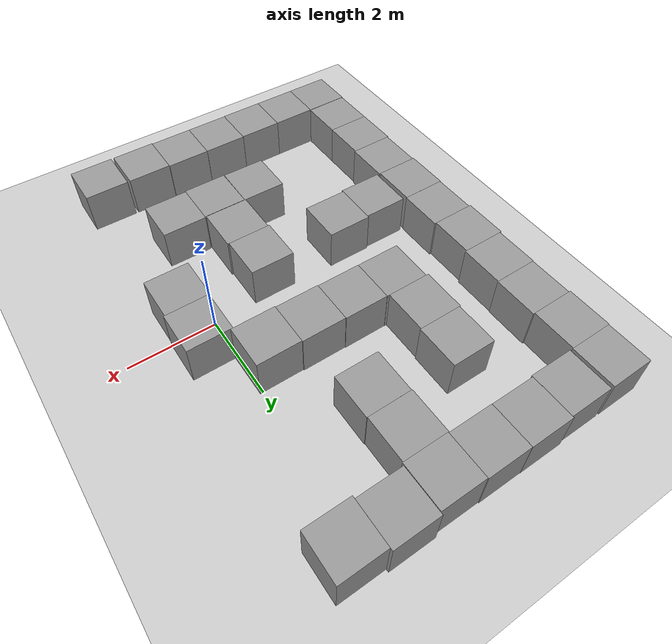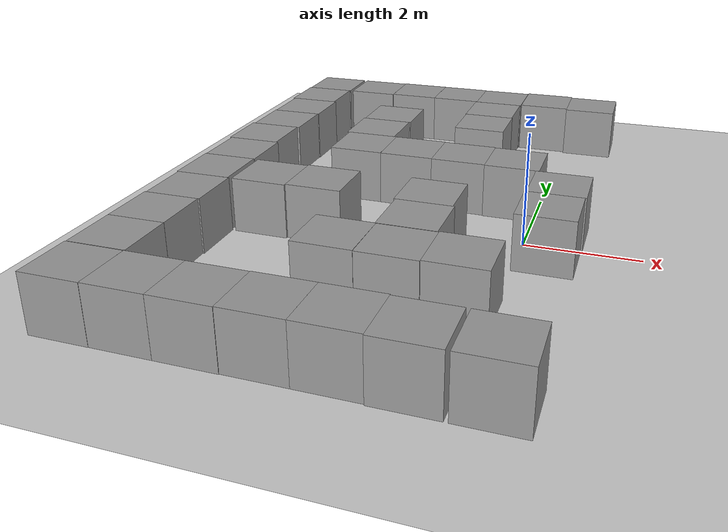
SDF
<sdf version="1.4">
 <world name="default">
  <model name="ground_plane">
   <static>1</static>
   <link name="link">
    <collision name="collision">
     <geometry><plane><normal>0 0 1</normal><size>100 100</size></plane></geometry>
     <surface><friction><ode><mu>100</mu><mu2>50</mu2></ode></friction></surface>
    </collision>
    <visual name="visual">
     <cast_shadows>0</cast_shadows>
     <geometry><plane><normal>0 0 1</normal><size>100 100</size></plane></geometry>
     <material>
      <script><uri>file://media/materials/scripts/gazebo.material</uri><name>Gazebo/Grey</name></script>
     </material>
    </visual>
    <velocity_decay><linear>0</linear><angular>0</angular></velocity_decay>
   </link>
  </model>
  <model name="unit_box_1">
   <pose>-3.45483 -0.509387 0.5 -0 -0 -0.00142</pose>
   <link name="link">
    <inertial>
     <mass>1</mass>
     <inertia><ixx>1</ixx><ixy>0</ixy><ixz>0</ixz><iyy>1</iyy><iyz>0</iyz><izz>1</izz></inertia>
    </inertial>
    <collision name="collision"><geometry><box><size>1 1 1</size></box></geometry></collision>
    <visual name="visual">
     <geometry><box><size>1 1 1</size></box></geometry>
     <material>
      <script><uri>file://media/materials/scripts/gazebo.material</uri><name>Gazebo/Grey</name></script>
     </material>
    </visual>
    <velocity_decay><linear>0</linear><angular>0</angular></velocity_decay>
   </link>
   <static>0</static>
  </model>
  <model name="unit_box_8">
   <pose>-3.47092 3.5164 0.5 0 -0 0.001406</pose>
   <link name="link">
    <inertial>
     <mass>1</mass>
     <inertia><ixx>1</ixx><ixy>0</ixy><ixz>0</ixz><iyy>1</iyy><iyz>0</iyz><izz>1</izz></inertia>
    </inertial>
    <collision name="collision"><geometry><box><size>1 1 1</size></box></geometry></collision>
    <visual name="visual">
     <geometry><box><size>1 1 1</size></box></geometry>
     <material>
      <script><uri>file://media/materials/scripts/gazebo.material</uri><name>Gazebo/Grey</name></script>
     </material>
    </visual>
    <velocity_decay><linear>0</linear><angular>0</angular></velocity_decay>
   </link>
   <static>0</static>
  </model>
  <model name="unit_box_9">
   <pose>-1.46787 -1.52229 0.5 0 -0 -0.00291</pose>
   <link name="link">
    <inertial>
     <mass>1</mass>
     <inertia><ixx>1</ixx><ixy>0</ixy><ixz>0</ixz><iyy>1</iyy><iyz>0</iyz><izz>1</izz></inertia>
    </inertial>
    <collision name="collision"><geometry><box><size>1 1 1</size></box></geometry></collision>
    <visual name="visual">
     <geometry><box><size>1 1 1</size></box></geometry>
     <material>
      <script><uri>file://media/materials/scripts/gazebo.material</uri><name>Gazebo/Grey</name></script>
     </material>
    </visual>
    <velocity_decay><linear>0</linear><angular>0</angular></velocity_decay>
   </link>
   <static>0</static>
  </model>
  <model name="unit_box_13">
   <pose>0.501702 0.485541 0.5 0 -0 0.000782</pose>
   <link name="link">
    <inertial>
     <mass>1</mass>
     <inertia><ixx>1</ixx><ixy>0</ixy><ixz>0</ixz><iyy>1</iyy><iyz>0</iyz><izz>1</izz></inertia>
    </inertial>
    <collision name="collision"><geometry><box><size>1 1 1</size></box></geometry></collision>
    <visual name="visual">
     <geometry><box><size>1 1 1</size></box></geometry>
     <material>
      <script><uri>file://media/materials/scripts/gazebo.material</uri><name>Gazebo/Grey</name></script>
     </material>
    </visual>
    <velocity_decay><linear>0</linear><angular>0</angular></velocity_decay>
   </link>
   <static>0</static>
  </model>
  <model name="unit_box_15">
   <pose>0.523949 -4.56364 0.5 0 -0 -0.001182</pose>
   <link name="link">
    <inertial>
     <mass>1</mass>
     <inertia><ixx>1</ixx><ixy>0</ixy><ixz>0</ixz><iyy>1</iyy><iyz>0</iyz><izz>1</izz></inertia>
    </inertial>
    <collision name="collision"><geometry><box><size>1 1 1</size></box></geometry></collision>
    <visual name="visual">
     <geometry><box><size>1 1 1</size></box></geometry>
     <material>
      <script><uri>file://media/materials/scripts/gazebo.material</uri><name>Gazebo/Grey</name></script>
     </material>
    </visual>
    <velocity_decay><linear>0</linear><angular>0</angular></velocity_decay>
   </link>
   <static>0</static>
  </model>
  <model name="unit_box_26">
   <pose>0.475944 -0.514493 0.5 0 -0 0.000783</pose>
   <link name="link">
    <inertial>
     <mass>1</mass>
     <inertia><ixx>1</ixx><ixy>0</ixy><ixz>0</ixz><iyy>1</iyy><iyz>0</iyz><izz>1</izz></inertia>
    </inertial>
    <collision name="collision"><geometry><box><size>1 1 1</size></box></geometry></collision>
    <visual name="visual">
     <geometry><box><size>1 1 1</size></box></geometry>
     <material>
      <script><uri>file://media/materials/scripts/gazebo.material</uri><name>Gazebo/Grey</name></script>
     </material>
    </visual>
    <velocity_decay><linear>0</linear><angular>0</angular></velocity_decay>
   </link>
   <static>0</static>
  </model>
  <model name="unit_box_28">
   <pose>-1.49632 -0.522124 0.5 0 -0 -0.002759</pose>
   <link name="link">
    <inertial>
     <mass>1</mass>
     <inertia><ixx>1</ixx><ixy>0</ixy><ixz>0</ixz><iyy>1</iyy><iyz>0</iyz><izz>1</izz></inertia>
    </inertial>
    <collision name="collision"><geometry><box><size>1 1 1</size></box></geometry></collision>
    <visual name="visual">
     <geometry><box><size>1 1 1</size></box></geometry>
     <material>
      <script><uri>file://media/materials/scripts/gazebo.material</uri><name>Gazebo/Grey</name></script>
     </material>
    </visual>
    <velocity_decay><linear>0</linear><angular>0</angular></velocity_decay>
   </link>
   <static>0</static>
  </model>
  <model name="unit_box_35">
   <pose>-1.50035 5.48061 0.5 0 -0 0.003416</pose>
   <link name="link">
    <inertial>
     <mass>1</mass>
     <inertia><ixx>1</ixx><ixy>0</ixy><ixz>0</ixz><iyy>1</iyy><iyz>0</iyz><izz>1</izz></inertia>
    </inertial>
    <collision name="collision"><geometry><box><size>1 1 1</size></box></geometry></collision>
    <visual name="visual">
     <geometry><box><size>1 1 1</size></box></geometry>
     <material>
      <script><uri>file://media/materials/scripts/gazebo.material</uri><name>Gazebo/Grey</name></script>
     </material>
    </visual>
    <velocity_decay><linear>0</linear><angular>0</angular></velocity_decay>
   </link>
   <static>0</static>
  </model>
  <model name="unit_box_51">
   <pose>-3.43859 1.51638 0.5 0 -0 0.001501</pose>
   <link name="link">
    <inertial>
     <mass>1</mass>
     <inertia><ixx>1</ixx><ixy>0</ixy><ixz>0</ixz><iyy>1</iyy><iyz>0</iyz><izz>1</izz></inertia>
    </inertial>
    <collision name="collision"><geometry><box><size>1 1 1</size></box></geometry></collision>
    <visual name="visual">
     <geometry><box><size>1 1 1</size></box></geometry>
     <material>
      <script><uri>file://media/materials/scripts/gazebo.material</uri><name>Gazebo/Grey</name></script>
     </material>
    </visual>
    <velocity_decay><linear>0</linear><angular>0</angular></velocity_decay>
   </link>
   <static>0</static>
  </model>
  <model name="unit_box_55">
   <pose>-0.5363 -4.56049 0.5 0 -0 -0.000679</pose>
   <link name="link">
    <inertial>
     <mass>1</mass>
     <inertia><ixx>1</ixx><ixy>0</ixy><ixz>0</ixz><iyy>1</iyy><iyz>0</iyz><izz>1</izz></inertia>
    </inertial>
    <collision name="collision"><geometry><box><size>1 1 1</size></box></geometry></collision>
    <visual name="visual">
     <geometry><box><size>1 1 1</size></box></geometry>
     <material>
      <script><uri>file://media/materials/scripts/gazebo.material</uri><name>Gazebo/Grey</name></script>
     </material>
    </visual>
    <velocity_decay><linear>0</linear><angular>0</angular></velocity_decay>
   </link>
   <static>0</static>
  </model>
  <model name="unit_box_56">
   <pose>-1.53635 -4.53876 0.5 0 -0 -0.000608</pose>
   <link name="link">
    <inertial>
     <mass>1</mass>
     <inertia><ixx>1</ixx><ixy>0</ixy><ixz>0</ixz><iyy>1</iyy><iyz>0</iyz><izz>1</izz></inertia>
    </inertial>
    <collision name="collision"><geometry><box><size>1 1 1</size></box></geometry></collision>
    <visual name="visual">
     <geometry><box><size>1 1 1</size></box></geometry>
     <material>
      <script><uri>file://media/materials/scripts/gazebo.material</uri><name>Gazebo/Grey</name></script>
     </material>
    </visual>
    <velocity_decay><linear>0</linear><angular>0</angular></velocity_decay>
   </link>
   <static>0</static>
  </model>
  <model name="unit_box_57">
   <pose>-2.5365 -4.5378 0.5 0 0 -0.000326</pose>
   <link name="link">
    <inertial>
     <mass>1</mass>
     <inertia><ixx>1</ixx><ixy>0</ixy><ixz>0</ixz><iyy>1</iyy><iyz>0</iyz><izz>1</izz></inertia>
    </inertial>
    <collision name="collision"><geometry><box><size>1 1 1</size></box></geometry></collision>
    <visual name="visual">
     <geometry><box><size>1 1 1</size></box></geometry>
     <material>
      <script><uri>file://media/materials/scripts/gazebo.material</uri><name>Gazebo/Grey</name></script>
     </material>
    </visual>
    <velocity_decay><linear>0</linear><angular>0</angular></velocity_decay>
   </link>
   <static>0</static>
  </model>
  <model name="unit_box_58">
   <pose>-3.53653 -4.54618 0.5 0 0 -0.000274</pose>
   <link name="link">
    <inertial>
     <mass>1</mass>
     <inertia><ixx>1</ixx><ixy>0</ixy><ixz>0</ixz><iyy>1</iyy><iyz>0</iyz><izz>1</izz></inertia>
    </inertial>
    <collision name="collision"><geometry><box><size>1 1 1</size></box></geometry></collision>
    <visual name="visual">
     <geometry><box><size>1 1 1</size></box></geometry>
     <material>
      <script><uri>file://media/materials/scripts/gazebo.material</uri><name>Gazebo/Grey</name></script>
     </material>
    </visual>
    <velocity_decay><linear>0</linear><angular>0</angular></velocity_decay>
   </link>
   <static>0</static>
  </model>
  <model name="unit_box_59">
   <pose>-4.53653 -4.54642 0.5 0 -0 -0.000272</pose>
   <link name="link">
    <inertial>
     <mass>1</mass>
     <inertia><ixx>1</ixx><ixy>0</ixy><ixz>0</ixz><iyy>1</iyy><iyz>0</iyz><izz>1</izz></inertia>
    </inertial>
    <collision name="collision"><geometry><box><size>1 1 1</size></box></geometry></collision>
    <visual name="visual">
     <geometry><box><size>1 1 1</size></box></geometry>
     <material>
      <script><uri>file://media/materials/scripts/gazebo.material</uri><name>Gazebo/Grey</name></script>
     </material>
    </visual>
    <velocity_decay><linear>0</linear><angular>0</angular></velocity_decay>
   </link>
   <static>0</static>
  </model>
  <model name="unit_box_60">
   <pose>-5.53672 -4.55003 0.5 0 -0 6.1e-05</pose>
   <link name="link">
    <inertial>
     <mass>1</mass>
     <inertia><ixx>1</ixx><ixy>0</ixy><ixz>0</ixz><iyy>1</iyy><iyz>0</iyz><izz>1</izz></inertia>
    </inertial>
    <collision name="collision"><geometry><box><size>1 1 1</size></box></geometry></collision>
    <visual name="visual">
     <geometry><box><size>1 1 1</size></box></geometry>
     <material>
      <script><uri>file://media/materials/scripts/gazebo.material</uri><name>Gazebo/Grey</name></script>
     </material>
    </visual>
    <velocity_decay><linear>0</linear><angular>0</angular></velocity_decay>
   </link>
   <static>0</static>
  </model>
  <model name="unit_box_61">
   <pose>-5.52594 -3.54001 0.5 0 -0 0.006337</pose>
   <link name="link">
    <inertial>
     <mass>1</mass>
     <inertia><ixx>1</ixx><ixy>0</ixy><ixz>0</ixz><iyy>1</iyy><iyz>0</iyz><izz>1</izz></inertia>
    </inertial>
    <collision name="collision"><geometry><box><size>1 1 1</size></box></geometry></collision>
    <visual name="visual">
     <geometry><box><size>1 1 1</size></box></geometry>
     <material>
      <script><uri>file://media/materials/scripts/gazebo.material</uri><name>Gazebo/Grey</name></script>
     </material>
    </visual>
    <velocity_decay><linear>0</linear><angular>0</angular></velocity_decay>
   </link>
   <static>0</static>
  </model>
  <model name="unit_box_62">
   <pose>-5.53108 -2.54002 0.5 0 -0 0.006346</pose>
   <link name="link">
    <inertial>
     <mass>1</mass>
     <inertia><ixx>1</ixx><ixy>0</ixy><ixz>0</ixz><iyy>1</iyy><iyz>0</iyz><izz>1</izz></inertia>
    </inertial>
    <collision name="collision"><geometry><box><size>1 1 1</size></box></geometry></collision>
    <visual name="visual">
     <geometry><box><size>1 1 1</size></box></geometry>
     <material>
      <script><uri>file://media/materials/scripts/gazebo.material</uri><name>Gazebo/Grey</name></script>
     </material>
    </visual>
    <velocity_decay><linear>0</linear><angular>0</angular></velocity_decay>
   </link>
   <static>0</static>
  </model>
  <model name="unit_box_63">
   <pose>-5.51302 -1.53986 0.5 0 -0 0.006397</pose>
   <link name="link">
    <inertial>
     <mass>1</mass>
     <inertia><ixx>1</ixx><ixy>0</ixy><ixz>0</ixz><iyy>1</iyy><iyz>0</iyz><izz>1</izz></inertia>
    </inertial>
    <collision name="collision"><geometry><box><size>1 1 1</size></box></geometry></collision>
    <visual name="visual">
     <geometry><box><size>1 1 1</size></box></geometry>
     <material>
      <script><uri>file://media/materials/scripts/gazebo.material</uri><name>Gazebo/Grey</name></script>
     </material>
    </visual>
    <velocity_decay><linear>0</linear><angular>0</angular></velocity_decay>
   </link>
   <static>0</static>
  </model>
  <model name="unit_box_64">
   <pose>-5.54512 -0.539989 0.5 0 -0 0.006507</pose>
   <link name="link">
    <inertial>
     <mass>1</mass>
     <inertia><ixx>1</ixx><ixy>0</ixy><ixz>0</ixz><iyy>1</iyy><iyz>0</iyz><izz>1</izz></inertia>
    </inertial>
    <collision name="collision"><geometry><box><size>1 1 1</size></box></geometry></collision>
    <visual name="visual">
     <geometry><box><size>1 1 1</size></box></geometry>
     <material>
      <script><uri>file://media/materials/scripts/gazebo.material</uri><name>Gazebo/Grey</name></script>
     </material>
    </visual>
    <velocity_decay><linear>0</linear><angular>0</angular></velocity_decay>
   </link>
   <static>0</static>
  </model>
  <model name="unit_box_65">
   <pose>-5.53653 0.460171 0.5 0 -0 0.00667</pose>
   <link name="link">
    <inertial>
     <mass>1</mass>
     <inertia><ixx>1</ixx><ixy>0</ixy><ixz>0</ixz><iyy>1</iyy><iyz>0</iyz><izz>1</izz></inertia>
    </inertial>
    <collision name="collision"><geometry><box><size>1 1 1</size></box></geometry></collision>
    <visual name="visual">
     <geometry><box><size>1 1 1</size></box></geometry>
     <material>
      <script><uri>file://media/materials/scripts/gazebo.material</uri><name>Gazebo/Grey</name></script>
     </material>
    </visual>
    <velocity_decay><linear>0</linear><angular>0</angular></velocity_decay>
   </link>
   <static>0</static>
  </model>
  <model name="unit_box_66">
   <pose>-4.45488 -0.546691 0.5 -0 -0 -0.001422</pose>
   <link name="link">
    <inertial>
     <mass>1</mass>
     <inertia><ixx>1</ixx><ixy>0</ixy><ixz>0</ixz><iyy>1</iyy><iyz>0</iyz><izz>1</izz></inertia>
    </inertial>
    <collision name="collision"><geometry><box><size>1 1 1</size></box></geometry></collision>
    <visual name="visual">
     <geometry><box><size>1 1 1</size></box></geometry>
     <material>
      <script><uri>file://media/materials/scripts/gazebo.material</uri><name>Gazebo/Grey</name></script>
     </material>
    </visual>
    <velocity_decay><linear>0</linear><angular>0</angular></velocity_decay>
   </link>
   <static>0</static>
  </model>
  <model name="unit_box_67">
   <pose>-5.58118 1.4599 0.5 0 -0 0.006675</pose>
   <link name="link">
    <inertial>
     <mass>1</mass>
     <inertia><ixx>1</ixx><ixy>0</ixy><ixz>0</ixz><iyy>1</iyy><iyz>0</iyz><izz>1</izz></inertia>
    </inertial>
    <collision name="collision"><geometry><box><size>1 1 1</size></box></geometry></collision>
    <visual name="visual">
     <geometry><box><size>1 1 1</size></box></geometry>
     <material>
      <script><uri>file://media/materials/scripts/gazebo.material</uri><name>Gazebo/Grey</name></script>
     </material>
    </visual>
    <velocity_decay><linear>0</linear><angular>0</angular></velocity_decay>
   </link>
   <static>0</static>
  </model>
  <model name="unit_box_68">
   <pose>-5.54598 2.46019 0.5 0 -0 0.006742</pose>
   <link name="link">
    <inertial>
     <mass>1</mass>
     <inertia><ixx>1</ixx><ixy>0</ixy><ixz>0</ixz><iyy>1</iyy><iyz>0</iyz><izz>1</izz></inertia>
    </inertial>
    <collision name="collision"><geometry><box><size>1 1 1</size></box></geometry></collision>
    <visual name="visual">
     <geometry><box><size>1 1 1</size></box></geometry>
     <material>
      <script><uri>file://media/materials/scripts/gazebo.material</uri><name>Gazebo/Grey</name></script>
     </material>
    </visual>
    <velocity_decay><linear>0</linear><angular>0</angular></velocity_decay>
   </link>
   <static>0</static>
  </model>
  <model name="unit_box_69">
   <pose>-5.53803 3.46034 0.5 0 -0 0.006888</pose>
   <link name="link">
    <inertial>
     <mass>1</mass>
     <inertia><ixx>1</ixx><ixy>0</ixy><ixz>0</ixz><iyy>1</iyy><iyz>0</iyz><izz>1</izz></inertia>
    </inertial>
    <collision name="collision"><geometry><box><size>1 1 1</size></box></geometry></collision>
    <visual name="visual">
     <geometry><box><size>1 1 1</size></box></geometry>
     <material>
      <script><uri>file://media/materials/scripts/gazebo.material</uri><name>Gazebo/Grey</name></script>
     </material>
    </visual>
    <velocity_decay><linear>0</linear><angular>0</angular></velocity_decay>
   </link>
   <static>0</static>
  </model>
  <model name="unit_box_70">
   <pose>-5.58103 4.46014 0.5 0 -0 0.007041</pose>
   <link name="link">
    <inertial>
     <mass>1</mass>
     <inertia><ixx>1</ixx><ixy>0</ixy><ixz>0</ixz><iyy>1</iyy><iyz>0</iyz><izz>1</izz></inertia>
    </inertial>
    <collision name="collision"><geometry><box><size>1 1 1</size></box></geometry></collision>
    <visual name="visual">
     <geometry><box><size>1 1 1</size></box></geometry>
     <material>
      <script><uri>file://media/materials/scripts/gazebo.material</uri><name>Gazebo/Grey</name></script>
     </material>
    </visual>
    <velocity_decay><linear>0</linear><angular>0</angular></velocity_decay>
   </link>
   <static>0</static>
  </model>
  <model name="unit_box_71">
   <pose>-5.57027 5.46029 0.5 0 -0 0.007131</pose>
   <link name="link">
    <inertial>
     <mass>1</mass>
     <inertia><ixx>1</ixx><ixy>0</ixy><ixz>0</ixz><iyy>1</iyy><iyz>0</iyz><izz>1</izz></inertia>
    </inertial>
    <collision name="collision"><geometry><box><size>1 1 1</size></box></geometry></collision>
    <visual name="visual">
     <geometry><box><size>1 1 1</size></box></geometry>
     <material>
      <script><uri>file://media/materials/scripts/gazebo.material</uri><name>Gazebo/Grey</name></script>
     </material>
    </visual>
    <velocity_decay><linear>0</linear><angular>0</angular></velocity_decay>
   </link>
   <static>0</static>
  </model>
  <model name="unit_box_72">
   <pose>-4.50097 5.4607 0.5 0 -0 0.002212</pose>
   <link name="link">
    <inertial>
     <mass>1</mass>
     <inertia><ixx>1</ixx><ixy>0</ixy><ixz>0</ixz><iyy>1</iyy><iyz>0</iyz><izz>1</izz></inertia>
    </inertial>
    <collision name="collision"><geometry><box><size>1 1 1</size></box></geometry></collision>
    <visual name="visual">
     <geometry><box><size>1 1 1</size></box></geometry>
     <material>
      <script><uri>file://media/materials/scripts/gazebo.material</uri><name>Gazebo/Grey</name></script>
     </material>
    </visual>
    <velocity_decay><linear>0</linear><angular>0</angular></velocity_decay>
   </link>
   <static>0</static>
  </model>
  <model name="unit_box_73">
   <pose>-3.50084 5.49303 0.5 0 -0 0.002543</pose>
   <link name="link">
    <inertial>
     <mass>1</mass>
     <inertia><ixx>1</ixx><ixy>0</ixy><ixz>0</ixz><iyy>1</iyy><iyz>0</iyz><izz>1</izz></inertia>
    </inertial>
    <collision name="collision"><geometry><box><size>1 1 1</size></box></geometry></collision>
    <visual name="visual">
     <geometry><box><size>1 1 1</size></box></geometry>
     <material>
      <script><uri>file://media/materials/scripts/gazebo.material</uri><name>Gazebo/Grey</name></script>
     </material>
    </visual>
    <velocity_decay><linear>0</linear><angular>0</angular></velocity_decay>
   </link>
   <static>0</static>
  </model>
  <model name="unit_box_74">
   <pose>-2.50052 5.49157 0.5 0 -0 0.003167</pose>
   <link name="link">
    <inertial>
     <mass>1</mass>
     <inertia><ixx>1</ixx><ixy>0</ixy><ixz>0</ixz><iyy>1</iyy><iyz>0</iyz><izz>1</izz></inertia>
    </inertial>
    <collision name="collision"><geometry><box><size>1 1 1</size></box></geometry></collision>
    <visual name="visual">
     <geometry><box><size>1 1 1</size></box></geometry>
     <material>
      <script><uri>file://media/materials/scripts/gazebo.material</uri><name>Gazebo/Grey</name></script>
     </material>
    </visual>
    <velocity_decay><linear>0</linear><angular>0</angular></velocity_decay>
   </link>
   <static>0</static>
  </model>
  <model name="unit_box_76">
   <pose>-0.49144 5.54065 0.5 0 -0 0.005066</pose>
   <link name="link">
    <inertial>
     <mass>1</mass>
     <inertia><ixx>1</ixx><ixy>0</ixy><ixz>0</ixz><iyy>1</iyy><iyz>0</iyz><izz>1</izz></inertia>
    </inertial>
    <collision name="collision"><geometry><box><size>1 1 1</size></box></geometry></collision>
    <visual name="visual">
     <geometry><box><size>1 1 1</size></box></geometry>
     <material>
      <script><uri>file://media/materials/scripts/gazebo.material</uri><name>Gazebo/Grey</name></script>
     </material>
    </visual>
    <velocity_decay><linear>0</linear><angular>0</angular></velocity_decay>
   </link>
   <static>0</static>
  </model>
  <model name="unit_box_77">
   <pose>0.50898 5.48472 0.5 0 -0 0.00525</pose>
   <link name="link">
    <inertial>
     <mass>1</mass>
     <inertia><ixx>1</ixx><ixy>0</ixy><ixz>0</ixz><iyy>1</iyy><iyz>0</iyz><izz>1</izz></inertia>
    </inertial>
    <collision name="collision"><geometry><box><size>1 1 1</size></box></geometry></collision>
    <visual name="visual">
     <geometry><box><size>1 1 1</size></box></geometry>
     <material>
      <script><uri>file://media/materials/scripts/gazebo.material</uri><name>Gazebo/Grey</name></script>
     </material>
    </visual>
    <velocity_decay><linear>0</linear><angular>0</angular></velocity_decay>
   </link>
   <static>0</static>
  </model>
  <model name="unit_box_91">
   <pose>-1.49523 3.48045 0.5 0 -0 0.003693</pose>
   <link name="link">
    <inertial>
     <mass>1</mass>
     <inertia><ixx>1</ixx><ixy>0</ixy><ixz>0</ixz><iyy>1</iyy><iyz>0</iyz><izz>1</izz></inertia>
    </inertial>
    <collision name="collision"><geometry><box><size>1 1 1</size></box></geometry></collision>
    <visual name="visual">
     <geometry><box><size>1 1 1</size></box></geometry>
     <material>
      <script><uri>file://media/materials/scripts/gazebo.material</uri><name>Gazebo/Grey</name></script>
     </material>
    </visual>
    <velocity_decay><linear>0</linear><angular>0</angular></velocity_decay>
   </link>
   <static>0</static>
  </model>
  <model name="unit_box_92">
   <pose>-1.51337 4.48044 0.5 0 -0 0.003639</pose>
   <link name="link">
    <inertial>
     <mass>1</mass>
     <inertia><ixx>1</ixx><ixy>0</ixy><ixz>0</ixz><iyy>1</iyy><iyz>0</iyz><izz>1</izz></inertia>
    </inertial>
    <collision name="collision"><geometry><box><size>1 1 1</size></box></geometry></collision>
    <visual name="visual">
     <geometry><box><size>1 1 1</size></box></geometry>
     <material>
      <script><uri>file://media/materials/scripts/gazebo.material</uri><name>Gazebo/Grey</name></script>
     </material>
    </visual>
    <velocity_decay><linear>0</linear><angular>0</angular></velocity_decay>
   </link>
   <static>0</static>
  </model>
  <model name="unit_box_94">
   <pose>-3.49166 2.51636 0.5 0 -0 0.001418</pose>
   <link name="link">
    <inertial>
     <mass>1</mass>
     <inertia><ixx>1</ixx><ixy>0</ixy><ixz>0</ixz><iyy>1</iyy><iyz>0</iyz><izz>1</izz></inertia>
    </inertial>
    <collision name="collision"><geometry><box><size>1 1 1</size></box></geometry></collision>
    <visual name="visual">
     <geometry><box><size>1 1 1</size></box></geometry>
     <material>
      <script><uri>file://media/materials/scripts/gazebo.material</uri><name>Gazebo/Grey</name></script>
     </material>
    </visual>
    <velocity_decay><linear>0</linear><angular>0</angular></velocity_decay>
   </link>
   <static>0</static>
  </model>
  <model name="unit_box_95">
   <pose>-2.43838 1.51381 0.5 0 -0 0.001924</pose>
   <link name="link">
    <inertial>
     <mass>1</mass>
     <inertia><ixx>1</ixx><ixy>0</ixy><ixz>0</ixz><iyy>1</iyy><iyz>0</iyz><izz>1</izz></inertia>
    </inertial>
    <collision name="collision"><geometry><box><size>1 1 1</size></box></geometry></collision>
    <visual name="visual">
     <geometry><box><size>1 1 1</size></box></geometry>
     <material>
      <script><uri>file://media/materials/scripts/gazebo.material</uri><name>Gazebo/Grey</name></script>
     </material>
    </visual>
    <velocity_decay><linear>0</linear><angular>0</angular></velocity_decay>
   </link>
   <static>0</static>
  </model>
  <model name="unit_box_96">
   <pose>-1.43833 1.50296 0.5 0 -0 0.001956</pose>
   <link name="link">
    <inertial>
     <mass>1</mass>
     <inertia><ixx>1</ixx><ixy>0</ixy><ixz>0</ixz><iyy>1</iyy><iyz>0</iyz><izz>1</izz></inertia>
    </inertial>
    <collision name="collision"><geometry><box><size>1 1 1</size></box></geometry></collision>
    <visual name="visual">
     <geometry><box><size>1 1 1</size></box></geometry>
     <material>
      <script><uri>file://media/materials/scripts/gazebo.material</uri><name>Gazebo/Grey</name></script>
     </material>
    </visual>
    <velocity_decay><linear>0</linear><angular>0</angular></velocity_decay>
   </link>
   <static>0</static>
  </model>
  <model name="unit_box_97">
   <pose>-0.438289 1.48568 0.5 0 -0 0.001973</pose>
   <link name="link">
    <inertial>
     <mass>1</mass>
     <inertia><ixx>1</ixx><ixy>0</ixy><ixz>0</ixz><iyy>1</iyy><iyz>0</iyz><izz>1</izz></inertia>
    </inertial>
    <collision name="collision"><geometry><box><size>1 1 1</size></box></geometry></collision>
    <visual name="visual">
     <geometry><box><size>1 1 1</size></box></geometry>
     <material>
      <script><uri>file://media/materials/scripts/gazebo.material</uri><name>Gazebo/Grey</name></script>
     </material>
    </visual>
    <velocity_decay><linear>0</linear><angular>0</angular></velocity_decay>
   </link>
   <static>0</static>
  </model>
  <model name="unit_box_99">
   <pose>-0.447582 -2.51044 0.5 0 0 -0.002277</pose>
   <link name="link">
    <inertial>
     <mass>1</mass>
     <inertia><ixx>1</ixx><ixy>0</ixy><ixz>0</ixz><iyy>1</iyy><iyz>0</iyz><izz>1</izz></inertia>
    </inertial>
    <collision name="collision"><geometry><box><size>1 1 1</size></box></geometry></collision>
    <visual name="visual">
     <geometry><box><size>1 1 1</size></box></geometry>
     <material>
      <script><uri>file://media/materials/scripts/gazebo.material</uri><name>Gazebo/Grey</name></script>
     </material>
    </visual>
    <velocity_decay><linear>0</linear><angular>0</angular></velocity_decay>
   </link>
   <static>0</static>
  </model>
  <model name="unit_box_100">
   <pose>-2.45042 -2.517 0.5 -0 -0 -0.008024</pose>
   <link name="link">
    <inertial>
     <mass>1</mass>
     <inertia><ixx>1</ixx><ixy>0</ixy><ixz>0</ixz><iyy>1</iyy><iyz>0</iyz><izz>1</izz></inertia>
    </inertial>
    <collision name="collision"><geometry><box><size>1 1 1</size></box></geometry></collision>
    <visual name="visual">
     <geometry><box><size>1 1 1</size></box></geometry>
     <material>
      <script><uri>file://media/materials/scripts/gazebo.material</uri><name>Gazebo/Grey</name></script>
     </material>
    </visual>
    <velocity_decay><linear>0</linear><angular>0</angular></velocity_decay>
   </link>
   <static>0</static>
  </model>
  <model name="unit_box_101">
   <pose>-1.44764 -2.53296 0.5 0 0 -0.002276</pose>
   <link name="link">
    <inertial>
     <mass>1</mass>
     <inertia><ixx>1</ixx><ixy>0</ixy><ixz>0</ixz><iyy>1</iyy><iyz>0</iyz><izz>1</izz></inertia>
    </inertial>
    <collision name="collision"><geometry><box><size>1 1 1</size></box></geometry></collision>
    <visual name="visual">
     <geometry><box><size>1 1 1</size></box></geometry>
     <material>
      <script><uri>file://media/materials/scripts/gazebo.material</uri><name>Gazebo/Grey</name></script>
     </material>
    </visual>
    <velocity_decay><linear>0</linear><angular>0</angular></velocity_decay>
   </link>
   <static>0</static>
  </model>
 </world>
</sdf>
